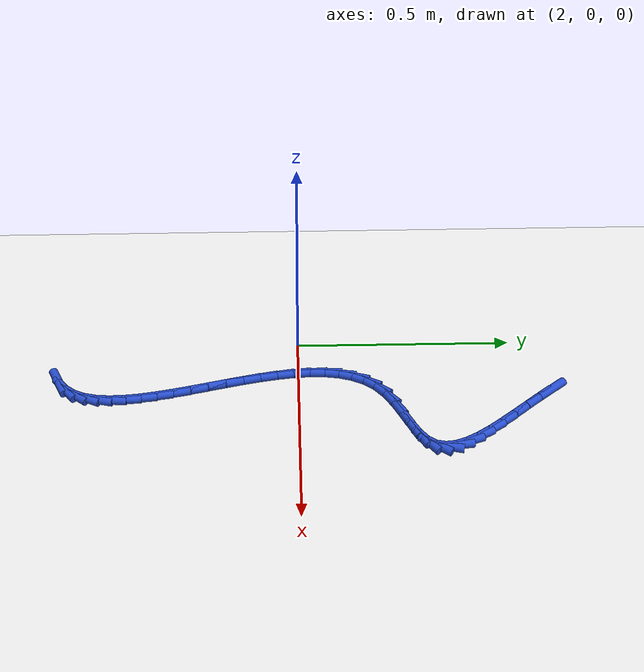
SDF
<sdf version="1.6">
 <world name="default">
  <model name="ground_plane">
   <static>1</static>
   <link name="link">
    <collision name="collision">
     <geometry><plane><normal>0 0 1</normal><size>100 100</size></plane></geometry>
     <surface><friction><ode><mu>100</mu><mu2>50</mu2></ode></friction></surface>
    </collision>
    <visual name="visual">
     <cast_shadows>0</cast_shadows>
     <geometry><plane><normal>0 0 1</normal><size>100 100</size></plane></geometry>
     <material>
      <script><uri>file://media/materials/scripts/gazebo.material</uri><name>Gazebo/WhiteGlow</name></script>
     </material>
    </visual>
   </link>
  </model>
  <model name="line">
   <link name="link_102">
    <pose>2.16344099211418 0.5735110961270392 0.01 0 1.57 -0.927552322227779</pose>
    <collision name="collision">
     <geometry><cylinder><radius>0.01</radius><length>0.08</length></cylinder></geometry>
    </collision>
    <visual name="visual">
     <material>
      <script><name>Gazebo/Blue</name><uri>file://media/materials/scripts/gazebo.material</uri></script>
     </material>
     <geometry><cylinder><radius>0.01</radius><length>0.08</length></cylinder></geometry>
    </visual>
   </link>
   <link name="link_103">
    <pose>2.1882157538718094 0.5404603807824028 0.01 0 1.57 -0.907183246503211</pose>
    <collision name="collision">
     <geometry><cylinder><radius>0.01</radius><length>0.08</length></cylinder></geometry>
    </collision>
    <visual name="visual">
     <material>
      <script><name>Gazebo/Blue</name><uri>file://media/materials/scripts/gazebo.material</uri></script>
     </material>
     <geometry><cylinder><radius>0.01</radius><length>0.08</length></cylinder></geometry>
    </visual>
   </link>
   <link name="link_104">
    <pose>2.2135544048157625 0.5080543089813783 0.01 0 1.57 -0.9022266411379058</pose>
    <collision name="collision">
     <geometry><cylinder><radius>0.01</radius><length>0.08</length></cylinder></geometry>
    </collision>
    <visual name="visual">
     <material>
      <script><name>Gazebo/Blue</name><uri>file://media/materials/scripts/gazebo.material</uri></script>
     </material>
     <geometry><cylinder><radius>0.01</radius><length>0.08</length></cylinder></geometry>
    </visual>
   </link>
   <link name="link_105">
    <pose>2.2385001512743328 0.4764745658884003 0.01 0 1.57 -0.9134724304852847</pose>
    <collision name="collision">
     <geometry><cylinder><radius>0.01</radius><length>0.08</length></cylinder></geometry>
    </collision>
    <visual name="visual">
     <material>
      <script><name>Gazebo/Blue</name><uri>file://media/materials/scripts/gazebo.material</uri></script>
     </material>
     <geometry><cylinder><radius>0.01</radius><length>0.08</length></cylinder></geometry>
    </visual>
   </link>
   <link name="link_106">
    <pose>2.262096199575811 0.4459028366679022 0.01 0 1.57 -0.9437651593437113</pose>
    <collision name="collision">
     <geometry><cylinder><radius>0.01</radius><length>0.08</length></cylinder></geometry>
    </collision>
    <visual name="visual">
     <material>
      <script><name>Gazebo/Blue</name><uri>file://media/materials/scripts/gazebo.material</uri></script>
     </material>
     <geometry><cylinder><radius>0.01</radius><length>0.08</length></cylinder></geometry>
    </visual>
   </link>
   <link name="link_107">
    <pose>2.283385756048491 0.41652080648431744 0.01 0 1.57 -0.9989682501526108</pose>
    <collision name="collision">
     <geometry><cylinder><radius>0.01</radius><length>0.08</length></cylinder></geometry>
    </collision>
    <visual name="visual">
     <material>
      <script><name>Gazebo/Blue</name><uri>file://media/materials/scripts/gazebo.material</uri></script>
     </material>
     <geometry><cylinder><radius>0.01</radius><length>0.08</length></cylinder></geometry>
    </visual>
   </link>
   <link name="link_108">
    <pose>2.3014120270206653 0.3885101605020798 0.01 0 1.57 -1.0898425365284363</pose>
    <collision name="collision">
     <geometry><cylinder><radius>0.01</radius><length>0.08</length></cylinder></geometry>
    </collision>
    <visual name="visual">
     <material>
      <script><name>Gazebo/Blue</name><uri>file://media/materials/scripts/gazebo.material</uri></script>
     </material>
     <geometry><cylinder><radius>0.01</radius><length>0.08</length></cylinder></geometry>
    </visual>
   </link>
   <link name="link_109">
    <pose>2.315218218820626 0.3620525838856235 0.01 0 1.57 -1.234974648632153</pose>
    <collision name="collision">
     <geometry><cylinder><radius>0.01</radius><length>0.08</length></cylinder></geometry>
    </collision>
    <visual name="visual">
     <material>
      <script><name>Gazebo/Blue</name><uri>file://media/materials/scripts/gazebo.material</uri></script>
     </material>
     <geometry><cylinder><radius>0.01</radius><length>0.08</length></cylinder></geometry>
    </visual>
   </link>
   <link name="link_110">
    <pose>2.323847537776665 0.3373297617993821 0.01 0 1.57 -1.461802186072689</pose>
    <collision name="collision">
     <geometry><cylinder><radius>0.01</radius><length>0.08</length></cylinder></geometry>
    </collision>
    <visual name="visual">
     <material>
      <script><name>Gazebo/Blue</name><uri>file://media/materials/scripts/gazebo.material</uri></script>
     </material>
     <geometry><cylinder><radius>0.01</radius><length>0.08</length></cylinder></geometry>
    </visual>
   </link>
   <link name="link_111">
    <pose>2.3263431902170764 0.3145233794077893 0.01 0 1.57 1.352450780739242</pose>
    <collision name="collision">
     <geometry><cylinder><radius>0.01</radius><length>0.08</length></cylinder></geometry>
    </collision>
    <visual name="visual">
     <material>
      <script><name>Gazebo/Blue</name><uri>file://media/materials/scripts/gazebo.material</uri></script>
     </material>
     <geometry><cylinder><radius>0.01</radius><length>0.08</length></cylinder></geometry>
    </visual>
   </link>
   <link name="link_112">
    <pose>2.321748382470151 0.29381512187527864 0.01 0 1.57 0.9695228517534145</pose>
    <collision name="collision">
     <geometry><cylinder><radius>0.01</radius><length>0.08</length></cylinder></geometry>
    </collision>
    <visual name="visual">
     <material>
      <script><name>Gazebo/Blue</name><uri>file://media/materials/scripts/gazebo.material</uri></script>
     </material>
     <geometry><cylinder><radius>0.01</radius><length>0.08</length></cylinder></geometry>
    </visual>
   </link>
   <link name="link_113">
    <pose>2.3091063208641827 0.27538667436628433 0.01 0 1.57 0.6530094447192301</pose>
    <collision name="collision">
     <geometry><cylinder><radius>0.01</radius><length>0.08</length></cylinder></geometry>
    </collision>
    <visual name="visual">
     <material>
      <script><name>Gazebo/Blue</name><uri>file://media/materials/scripts/gazebo.material</uri></script>
     </material>
     <geometry><cylinder><radius>0.01</radius><length>0.08</length></cylinder></geometry>
    </visual>
   </link>
   <link name="link_114">
    <pose>2.2879894944930292 0.2592330637189478 0.01 0 1.57 0.4936719058285573</pose>
    <collision name="collision">
     <geometry><cylinder><radius>0.01</radius><length>0.08</length></cylinder></geometry>
    </collision>
    <visual name="visual">
     <material>
      <script><name>Gazebo/Blue</name><uri>file://media/materials/scripts/gazebo.material</uri></script>
     </material>
     <geometry><cylinder><radius>0.01</radius><length>0.08</length></cylinder></geometry>
    </visual>
   </link>
   <link name="link_115">
    <pose>2.2605186763019365 0.24445063192927627 0.01 0 1.57 0.4405285531653111</pose>
    <collision name="collision">
     <geometry><cylinder><radius>0.01</radius><length>0.08</length></cylinder></geometry>
    </collision>
    <visual name="visual">
     <material>
      <script><name>Gazebo/Blue</name><uri>file://media/materials/scripts/gazebo.material</uri></script>
     </material>
     <geometry><cylinder><radius>0.01</radius><length>0.08</length></cylinder></geometry>
    </visual>
   </link>
   <link name="link_116">
    <pose>2.229580586339487 0.2298655999660346 0.01 0 1.57 0.4586149393004236</pose>
    <collision name="collision">
     <geometry><cylinder><radius>0.01</radius><length>0.08</length></cylinder></geometry>
    </collision>
    <visual name="visual">
     <material>
      <script><name>Gazebo/Blue</name><uri>file://media/materials/scripts/gazebo.material</uri></script>
     </material>
     <geometry><cylinder><radius>0.01</radius><length>0.08</length></cylinder></geometry>
    </visual>
   </link>
   <link name="link_117">
    <pose>2.1980620947637446 0.21430413585996055 0.01 0 1.57 0.5450509619681483</pose>
    <collision name="collision">
     <geometry><cylinder><radius>0.01</radius><length>0.08</length></cylinder></geometry>
    </collision>
    <visual name="visual">
     <material>
      <script><name>Gazebo/Blue</name><uri>file://media/materials/scripts/gazebo.material</uri></script>
     </material>
     <geometry><cylinder><radius>0.01</radius><length>0.08</length></cylinder></geometry>
    </visual>
   </link>
   <link name="link_118">
    <pose>2.1688500717327757 0.1965924076417921 0.01 0 1.57 0.7135510187300556</pose>
    <collision name="collision">
     <geometry><cylinder><radius>0.01</radius><length>0.08</length></cylinder></geometry>
    </collision>
    <visual name="visual">
     <material>
      <script><name>Gazebo/Blue</name><uri>file://media/materials/scripts/gazebo.material</uri></script>
     </material>
     <geometry><cylinder><radius>0.01</radius><length>0.08</length></cylinder></geometry>
    </visual>
   </link>
   <link name="link_119">
    <pose>2.144646379158926 0.17563873683061051 0.01 0 1.57 0.9223052690866198</pose>
    <collision name="collision">
     <geometry><cylinder><radius>0.01</radius><length>0.08</length></cylinder></geometry>
    </collision>
    <visual name="visual">
     <material>
      <script><name>Gazebo/Blue</name><uri>file://media/materials/scripts/gazebo.material</uri></script>
     </material>
     <geometry><cylinder><radius>0.01</radius><length>0.08</length></cylinder></geometry>
    </visual>
   </link>
   <link name="link_120">
    <pose>2.126155242788826 0.15123850151326576 0.01 0 1.57 1.1206420768664458</pose>
    <collision name="collision">
     <geometry><cylinder><radius>0.01</radius><length>0.08</length></cylinder></geometry>
    </collision>
    <visual name="visual">
     <material>
      <script><name>Gazebo/Blue</name><uri>file://media/materials/scripts/gazebo.material</uri></script>
     </material>
     <geometry><cylinder><radius>0.01</radius><length>0.08</length></cylinder></geometry>
    </visual>
   </link>
   <link name="link_121">
    <pose>2.112861243808427 0.12372866674647627 0.01 0 1.57 1.293113853413865</pose>
    <collision name="collision">
     <geometry><cylinder><radius>0.01</radius><length>0.08</length></cylinder></geometry>
    </collision>
    <visual name="visual">
     <material>
      <script><name>Gazebo/Blue</name><uri>file://media/materials/scripts/gazebo.material</uri></script>
     </material>
     <geometry><cylinder><radius>0.01</radius><length>0.08</length></cylinder></geometry>
    </visual>
   </link>
   <link name="link_122">
    <pose>2.1042315286345916 0.09345393955053367 0.01 0 1.57 1.434071081266858</pose>
    <collision name="collision">
     <geometry><cylinder><radius>0.01</radius><length>0.08</length></cylinder></geometry>
    </collision>
    <visual name="visual">
     <material>
      <script><name>Gazebo/Blue</name><uri>file://media/materials/scripts/gazebo.material</uri></script>
     </material>
     <geometry><cylinder><radius>0.01</radius><length>0.08</length></cylinder></geometry>
    </visual>
   </link>
   <link name="link_123">
    <pose>2.099733243684183 0.06075902694572975 0.01 0 1.57 1.544926396530955</pose>
    <collision name="collision">
     <geometry><cylinder><radius>0.01</radius><length>0.08</length></cylinder></geometry>
    </collision>
    <visual name="visual">
     <material>
      <script><name>Gazebo/Blue</name><uri>file://media/materials/scripts/gazebo.material</uri></script>
     </material>
     <geometry><cylinder><radius>0.01</radius><length>0.08</length></cylinder></geometry>
    </visual>
   </link>
   <link name="link_124">
    <pose>2.098833535374063 0.025988635952356103 0.01 0 1.57 -1.5115248534534618</pose>
    <collision name="collision">
     <geometry><cylinder><radius>0.01</radius><length>0.08</length></cylinder></geometry>
    </collision>
    <visual name="visual">
     <material>
      <script><name>Gazebo/Blue</name><uri>file://media/materials/scripts/gazebo.material</uri></script>
     </material>
     <geometry><cylinder><radius>0.01</radius><length>0.08</length></cylinder></geometry>
    </visual>
   </link>
   <link name="link_125">
    <pose>2.1009995501210956 -0.010512526409296466 0.01 0 1.57 -1.4474035025764436</pose>
    <collision name="collision">
     <geometry><cylinder><radius>0.01</radius><length>0.08</length></cylinder></geometry>
    </collision>
    <visual name="visual">
     <material>
      <script><name>Gazebo/Blue</name><uri>file://media/materials/scripts/gazebo.material</uri></script>
     </material>
     <geometry><cylinder><radius>0.01</radius><length>0.08</length></cylinder></geometry>
    </visual>
   </link>
   <link name="link_126">
    <pose>2.105698434342143 -0.0483997531189343 0.01 0 1.57 -1.400383559719569</pose>
    <collision name="collision">
     <geometry><cylinder><radius>0.01</radius><length>0.08</length></cylinder></geometry>
    </collision>
    <visual name="visual">
     <material>
      <script><name>Gazebo/Blue</name><uri>file://media/materials/scripts/gazebo.material</uri></script>
     </material>
     <geometry><cylinder><radius>0.01</radius><length>0.08</length></cylinder></geometry>
    </visual>
   </link>
   <link name="link_127">
    <pose>2.112397334454068 -0.08732833715626669 0.01 0 1.57 -1.3675592283559288</pose>
    <collision name="collision">
     <geometry><cylinder><radius>0.01</radius><length>0.08</length></cylinder></geometry>
    </collision>
    <visual name="visual">
     <material>
      <script><name>Gazebo/Blue</name><uri>file://media/materials/scripts/gazebo.material</uri></script>
     </material>
     <geometry><cylinder><radius>0.01</radius><length>0.08</length></cylinder></geometry>
    </visual>
   </link>
   <link name="link_128">
    <pose>2.120563396873734 -0.12695357150100192 0.01 0 1.57 -1.3469713179958673</pose>
    <collision name="collision">
     <geometry><cylinder><radius>0.01</radius><length>0.08</length></cylinder></geometry>
    </collision>
    <visual name="visual">
     <material>
      <script><name>Gazebo/Blue</name><uri>file://media/materials/scripts/gazebo.material</uri></script>
     </material>
     <geometry><cylinder><radius>0.01</radius><length>0.08</length></cylinder></geometry>
    </visual>
   </link>
   <link name="link_129">
    <pose>2.1296637680180037 -0.16693074913284822 0.01 0 1.57 -1.3374856586971953</pose>
    <collision name="collision">
     <geometry><cylinder><radius>0.01</radius><length>0.08</length></cylinder></geometry>
    </collision>
    <visual name="visual">
     <material>
      <script><name>Gazebo/Blue</name><uri>file://media/materials/scripts/gazebo.material</uri></script>
     </material>
     <geometry><cylinder><radius>0.01</radius><length>0.08</length></cylinder></geometry>
    </visual>
   </link>
   <link name="link_130">
    <pose>2.1391655943037393 -0.20691516303151394 0.01 0 1.57 -1.3387084414233852</pose>
    <collision name="collision">
     <geometry><cylinder><radius>0.01</radius><length>0.08</length></cylinder></geometry>
    </collision>
    <visual name="visual">
     <material>
      <script><name>Gazebo/Blue</name><uri>file://media/materials/scripts/gazebo.material</uri></script>
     </material>
     <geometry><cylinder><radius>0.01</radius><length>0.08</length></cylinder></geometry>
    </visual>
   </link>
   <link name="link_131">
    <pose>2.148536022147804 -0.24656210617670735 0.01 0 1.57 -1.3509699319949129</pose>
    <collision name="collision">
     <geometry><cylinder><radius>0.01</radius><length>0.08</length></cylinder></geometry>
    </collision>
    <visual name="visual">
     <material>
      <script><name>Gazebo/Blue</name><uri>file://media/materials/scripts/gazebo.material</uri></script>
     </material>
     <geometry><cylinder><radius>0.01</radius><length>0.08</length></cylinder></geometry>
    </visual>
   </link>
   <link name="link_132">
    <pose>2.1572421979670615 -0.28552687154813783 0.01 0 1.57 -1.3753912945399778</pose>
    <collision name="collision">
     <geometry><cylinder><radius>0.01</radius><length>0.08</length></cylinder></geometry>
    </collision>
    <visual name="visual">
     <material>
      <script><name>Gazebo/Blue</name><uri>file://media/materials/scripts/gazebo.material</uri></script>
     </material>
     <geometry><cylinder><radius>0.01</radius><length>0.08</length></cylinder></geometry>
    </visual>
   </link>
   <link name="link_133">
    <pose>2.1647512681783736 -0.3234647521255115 0.01 0 1.57 -1.4140480608785895</pose>
    <collision name="collision">
     <geometry><cylinder><radius>0.01</radius><length>0.08</length></cylinder></geometry>
    </collision>
    <visual name="visual">
     <material>
      <script><name>Gazebo/Blue</name><uri>file://media/materials/scripts/gazebo.material</uri></script>
     </material>
     <geometry><cylinder><radius>0.01</radius><length>0.08</length></cylinder></geometry>
    </visual>
   </link>
   <link name="link_134">
    <pose>2.1705303791986026 -0.36003104088853766 0.01 0 1.57 -1.470238532123836</pose>
    <collision name="collision">
     <geometry><cylinder><radius>0.01</radius><length>0.08</length></cylinder></geometry>
    </collision>
    <visual name="visual">
     <material>
      <script><name>Gazebo/Blue</name><uri>file://media/materials/scripts/gazebo.material</uri></script>
     </material>
     <geometry><cylinder><radius>0.01</radius><length>0.08</length></cylinder></geometry>
    </visual>
   </link>
   <link name="link_135">
    <pose>2.1740466774446126 -0.39488103081692477 0.01 0 1.57 -1.5488219986932648</pose>
    <collision name="collision">
     <geometry><cylinder><radius>0.01</radius><length>0.08</length></cylinder></geometry>
    </collision>
    <visual name="visual">
     <material>
      <script><name>Gazebo/Blue</name><uri>file://media/materials/scripts/gazebo.material</uri></script>
     </material>
     <geometry><cylinder><radius>0.01</radius><length>0.08</length></cylinder></geometry>
    </visual>
   </link>
   <link name="link_136">
    <pose>2.174767309333266 -0.42767001489038103 0.01 0 1.57 1.4851731618306263</pose>
    <collision name="collision">
     <geometry><cylinder><radius>0.01</radius><length>0.08</length></cylinder></geometry>
    </collision>
    <visual name="visual">
     <material>
      <script><name>Gazebo/Blue</name><uri>file://media/materials/scripts/gazebo.material</uri></script>
     </material>
     <geometry><cylinder><radius>0.01</radius><length>0.08</length></cylinder></geometry>
    </visual>
   </link>
   <link name="link_137">
    <pose>2.172159421281425 -0.4580532860886145 0.01 0 1.57 1.340823332115563</pose>
    <collision name="collision">
     <geometry><cylinder><radius>0.01</radius><length>0.08</length></cylinder></geometry>
    </collision>
    <visual name="visual">
     <material>
      <script><name>Gazebo/Blue</name><uri>file://media/materials/scripts/gazebo.material</uri></script>
     </material>
     <geometry><cylinder><radius>0.01</radius><length>0.08</length></cylinder></geometry>
    </visual>
   </link>
   <link name="link_138">
    <pose>2.165690159705954 -0.485686137391334 0.01 0 1.57 1.1540078977720722</pose>
    <collision name="collision">
     <geometry><cylinder><radius>0.01</radius><length>0.08</length></cylinder></geometry>
    </collision>
    <visual name="visual">
     <material>
      <script><name>Gazebo/Blue</name><uri>file://media/materials/scripts/gazebo.material</uri></script>
     </material>
     <geometry><cylinder><radius>0.01</radius><length>0.08</length></cylinder></geometry>
    </visual>
   </link>
   <link name="link_139">
    <pose>2.154826671023714 -0.5102238617782473 0.01 0 1.57 0.9282924141124599</pose>
    <collision name="collision">
     <geometry><cylinder><radius>0.01</radius><length>0.08</length></cylinder></geometry>
    </collision>
    <visual name="visual">
     <material>
      <script><name>Gazebo/Blue</name><uri>file://media/materials/scripts/gazebo.material</uri></script>
     </material>
     <geometry><cylinder><radius>0.01</radius><length>0.08</length></cylinder></geometry>
    </visual>
   </link>
   <link name="link_140">
    <pose>2.139036101651569 -0.5313217522290636 0.01 0 1.57 0.683656262393293</pose>
    <collision name="collision">
     <geometry><cylinder><radius>0.01</radius><length>0.08</length></cylinder></geometry>
    </collision>
    <visual name="visual">
     <material>
      <script><name>Gazebo/Blue</name><uri>file://media/materials/scripts/gazebo.material</uri></script>
     </material>
     <geometry><cylinder><radius>0.01</radius><length>0.08</length></cylinder></geometry>
    </visual>
   </link>
   <link name="link_141">
    <pose>2.117785598006381 -0.5486351017234898 0.01 0 1.57 0.45680919632052336</pose>
    <collision name="collision">
     <geometry><cylinder><radius>0.01</radius><length>0.08</length></cylinder></geometry>
    </collision>
    <visual name="visual">
     <material>
      <script><name>Gazebo/Blue</name><uri>file://media/materials/scripts/gazebo.material</uri></script>
     </material>
     <geometry><cylinder><radius>0.01</radius><length>0.08</length></cylinder></geometry>
    </visual>
   </link>
  </model>
 </world>
</sdf>
